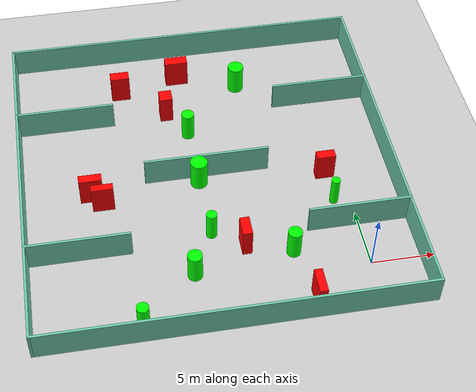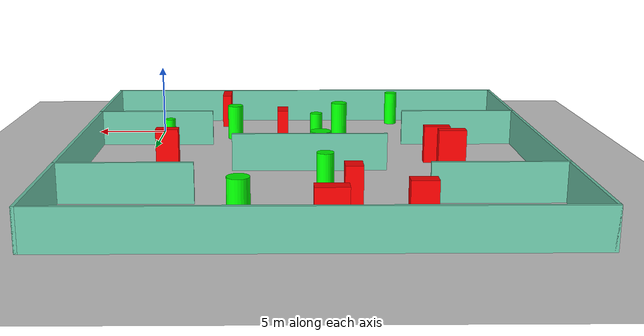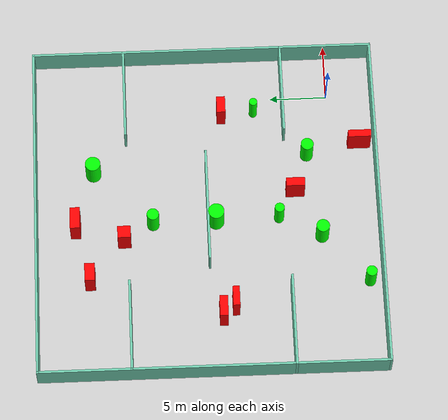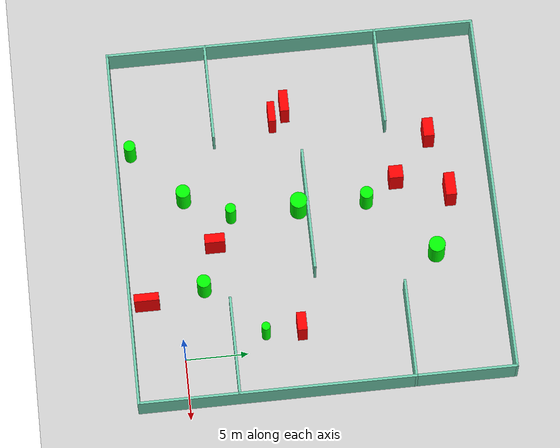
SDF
<sdf version="1.7">
 <world name="default">
  <light name="sun" type="directional">
   <pose>0 0 10 0 -0 0</pose>
   <diffuse>0.8 0.8 0.8 1</diffuse>
   <specular>0.2 0.2 0.2 1</specular>
   <attenuation>
    <range>1000</range>
    <constant>0.9</constant>
    <linear>0.01</linear>
    <quadratic>0.001</quadratic>
   </attenuation>
   <direction>-0.5 0.1 -0.9</direction>
   <spot><inner_angle>0</inner_angle><outer_angle>0</outer_angle><falloff>0</falloff></spot>
  </light>
  <model name="ground_plane">
   <static>1</static>
   <link name="link">
    <collision name="collision">
     <geometry><plane><normal>0 0 1</normal><size>100 100</size></plane></geometry>
     <surface>
      <contact><collide_bitmask>65535</collide_bitmask></contact>
      <friction><ode><mu>100</mu><mu2>50</mu2></ode></friction>
     </surface>
    </collision>
    <visual name="visual">
     <cast_shadows>0</cast_shadows>
     <geometry><plane><normal>0 0 1</normal><size>100 100</size></plane></geometry>
     <material>
      <script><uri>file://media/materials/scripts/gazebo.material</uri><name>Gazebo/Grey</name></script>
     </material>
    </visual>
   </link>
  </model>
  <gravity>0 0 -9.8</gravity>
  <magnetic_field>6e-06 2.3e-05 -4.2e-05</magnetic_field>
  <atmosphere type="adiabatic"/>
  <physics type="ode">
   <max_step_size>0.001</max_step_size>
   <real_time_factor>1</real_time_factor>
   <real_time_update_rate>1000</real_time_update_rate>
  </physics>
  <scene><ambient>0.4 0.4 0.4 1</ambient><background>0.7 0.7 0.7 1</background><shadows>1</shadows></scene>
  <spherical_coordinates>
   <surface_model>EARTH_WGS84</surface_model>
   <latitude_deg>0</latitude_deg>
   <longitude_deg>0</longitude_deg>
   <elevation>0</elevation>
   <heading_deg>0</heading_deg>
  </spherical_coordinates>
  <model name="my_base_walls">
   <link name="Wall_10">
    <collision name="Wall_10_Collision">
     <geometry><box><size>8.2 0.2 2.5</size></box></geometry>
     <pose>0 0 1.25 0 -0 0</pose>
    </collision>
    <visual name="Wall_10_Visual">
     <pose>0 0 1.25 0 -0 0</pose>
     <geometry><box><size>8.2 0.2 2.5</size></box></geometry>
     <material>
      <script><uri>file://media/materials/scripts/gazebo.material</uri><name>Gazebo/Grey</name></script>
      <ambient>0.435294 0.796078 0.67451 1</ambient>
     </material>
     <meta><layer>0</layer></meta>
    </visual>
    <pose>-11 -7 0 0 -0 0</pose>
   </link>
   <link name="Wall_12">
    <collision name="Wall_12_Collision">
     <geometry><box><size>8.2 0.2 2.5</size></box></geometry>
     <pose>0 0 1.25 0 -0 0</pose>
    </collision>
    <visual name="Wall_12_Visual">
     <pose>0 0 1.25 0 -0 0</pose>
     <geometry><box><size>8.2 0.2 2.5</size></box></geometry>
     <material>
      <script><uri>file://media/materials/scripts/gazebo.material</uri><name>Gazebo/Grey</name></script>
      <ambient>0.435294 0.796078 0.67451 1</ambient>
     </material>
     <meta><layer>0</layer></meta>
    </visual>
    <pose>-11 7 0 0 -0 0</pose>
   </link>
   <link name="Wall_14">
    <collision name="Wall_14_Collision">
     <geometry><box><size>8.2 0.2 2.5</size></box></geometry>
     <pose>0 0 1.25 0 -0 0</pose>
    </collision>
    <visual name="Wall_14_Visual">
     <pose>0 0 1.25 0 -0 0</pose>
     <geometry><box><size>8.2 0.2 2.5</size></box></geometry>
     <material>
      <script><uri>file://media/materials/scripts/gazebo.material</uri><name>Gazebo/Grey</name></script>
      <ambient>0.435294 0.796078 0.67451 1</ambient>
     </material>
     <meta><layer>0</layer></meta>
    </visual>
    <pose>11 7 0 0 -0 3.14159</pose>
   </link>
   <link name="Wall_16">
    <collision name="Wall_16_Collision">
     <geometry><box><size>10.2 0.2 2.5</size></box></geometry>
     <pose>0 0 1.25 0 -0 0</pose>
    </collision>
    <visual name="Wall_16_Visual">
     <pose>0 0 1.25 0 -0 0</pose>
     <geometry><box><size>10.2 0.2 2.5</size></box></geometry>
     <material>
      <script><uri>file://media/materials/scripts/gazebo.material</uri><name>Gazebo/Grey</name></script>
      <ambient>0.435294 0.796078 0.67451 1</ambient>
     </material>
     <meta><layer>0</layer></meta>
    </visual>
    <pose>0 0 0 0 -0 3.14159</pose>
   </link>
   <link name="Wall_2">
    <collision name="Wall_2_Collision">
     <geometry><box><size>30.2 0.2 2.5</size></box></geometry>
     <pose>0 0 1.25 0 -0 0</pose>
    </collision>
    <visual name="Wall_2_Visual">
     <pose>0 0 1.25 0 -0 0</pose>
     <geometry><box><size>30.2 0.2 2.5</size></box></geometry>
     <material>
      <script><uri>file://media/materials/scripts/gazebo.material</uri><name>Gazebo/Grey</name></script>
      <ambient>0.435294 0.796078 0.67451 1</ambient>
     </material>
     <meta><layer>0</layer></meta>
    </visual>
    <pose>0 -15 0 0 -0 3.14159</pose>
   </link>
   <link name="Wall_3">
    <collision name="Wall_3_Collision">
     <geometry><box><size>30.2 0.2 2.5</size></box></geometry>
     <pose>0 0 1.25 0 -0 0</pose>
    </collision>
    <visual name="Wall_3_Visual">
     <pose>0 0 1.25 0 -0 0</pose>
     <geometry><box><size>30.2 0.2 2.5</size></box></geometry>
     <material>
      <script><uri>file://media/materials/scripts/gazebo.material</uri><name>Gazebo/Grey</name></script>
      <ambient>0.435294 0.796078 0.67451 1</ambient>
     </material>
     <meta><layer>0</layer></meta>
    </visual>
    <pose>-15 0 0 0 -0 1.5708</pose>
   </link>
   <link name="Wall_4">
    <collision name="Wall_4_Collision">
     <geometry><box><size>30.2 0.2 2.5</size></box></geometry>
     <pose>0 0 1.25 0 -0 0</pose>
    </collision>
    <visual name="Wall_4_Visual">
     <pose>0 0 1.25 0 -0 0</pose>
     <geometry><box><size>30.2 0.2 2.5</size></box></geometry>
     <material>
      <script><uri>file://media/materials/scripts/gazebo.material</uri><name>Gazebo/Grey</name></script>
      <ambient>0.435294 0.796078 0.67451 1</ambient>
     </material>
     <meta><layer>0</layer></meta>
    </visual>
    <pose>0 15 0 0 -0 0</pose>
   </link>
   <link name="Wall_6">
    <collision name="Wall_6_Collision">
     <geometry><box><size>30.2 0.2 2.5</size></box></geometry>
     <pose>0 0 1.25 0 -0 0</pose>
    </collision>
    <visual name="Wall_6_Visual">
     <pose>0 0 1.25 0 -0 0</pose>
     <geometry><box><size>30.2 0.2 2.5</size></box></geometry>
     <material>
      <script><uri>file://media/materials/scripts/gazebo.material</uri><name>Gazebo/Grey</name></script>
      <ambient>0.435294 0.796078 0.67451 1</ambient>
     </material>
     <meta><layer>0</layer></meta>
    </visual>
    <pose>15 0 0 0 -0 1.5708</pose>
   </link>
   <link name="Wall_8">
    <collision name="Wall_8_Collision">
     <geometry><box><size>8.2 0.2 2.5</size></box></geometry>
     <pose>0 0 1.25 0 -0 0</pose>
    </collision>
    <visual name="Wall_8_Visual">
     <pose>0 0 1.25 0 -0 0</pose>
     <geometry><box><size>8.2 0.2 2.5</size></box></geometry>
     <material>
      <script><uri>file://media/materials/scripts/gazebo.material</uri><name>Gazebo/Grey</name></script>
      <ambient>0.435294 0.796078 0.67451 1</ambient>
     </material>
     <meta><layer>0</layer></meta>
    </visual>
    <pose>11 -7 0 0 -0 3.14159</pose>
   </link>
   <static>1</static>
   <pose>-11 11 0 0 -0 0</pose>
  </model>
  <model name="cylinder1">
   <static>1</static>
   <link name="link">
    <inertial>
     <mass>1</mass>
     <inertia><ixx>0.5</ixx><ixy>0</ixy><ixz>0</ixz><iyy>0.5</iyy><iyz>0</iyz><izz>1</izz></inertia>
    </inertial>
    <collision name="collision">
     <geometry><cylinder><radius>0.4700029721431055</radius><length>2.5</length></cylinder></geometry>
    </collision>
    <visual name="visual">
     <geometry><cylinder><radius>0.4700029721431055</radius><length>2.5</length></cylinder></geometry>
     <material>
      <ambient>0 1 0 1</ambient>
      <diffuse>0 1 0 1</diffuse>
      <specular>0.1 0.1 0.1 1</specular>
      <emissive>0 0 0 0</emissive>
     </material>
    </visual>
   </link>
   <pose>-17.856133124498424 -2.859635101211327 1.25 0 0 0</pose>
  </model>
  <model name="cylinder2">
   <static>1</static>
   <link name="link">
    <inertial>
     <mass>1</mass>
     <inertia><ixx>0.5</ixx><ixy>0</ixy><ixz>0</ixz><iyy>0.5</iyy><iyz>0</iyz><izz>1</izz></inertia>
    </inertial>
    <collision name="collision">
     <geometry><cylinder><radius>0.6654341513044223</radius><length>2.5</length></cylinder></geometry>
    </collision>
    <visual name="visual">
     <geometry><cylinder><radius>0.6654341513044223</radius><length>2.5</length></cylinder></geometry>
     <material>
      <ambient>0 1 0 1</ambient>
      <diffuse>0 1 0 1</diffuse>
      <specular>0.1 0.1 0.1 1</specular>
      <emissive>0 0 0 0</emissive>
     </material>
    </visual>
   </link>
   <pose>-6.830680796081278 20.927742915955594 1.25 0 0 0</pose>
  </model>
  <model name="cylinder3">
   <static>1</static>
   <link name="link">
    <inertial>
     <mass>1</mass>
     <inertia><ixx>0.5</ixx><ixy>0</ixy><ixz>0</ixz><iyy>0.5</iyy><iyz>0</iyz><izz>1</izz></inertia>
    </inertial>
    <collision name="collision">
     <geometry><cylinder><radius>0.5544599650150616</radius><length>2.5</length></cylinder></geometry>
    </collision>
    <visual name="visual">
     <geometry><cylinder><radius>0.5544599650150616</radius><length>2.5</length></cylinder></geometry>
     <material>
      <ambient>0 1 0 1</ambient>
      <diffuse>0 1 0 1</diffuse>
      <specular>0.1 0.1 0.1 1</specular>
      <emissive>0 0 0 0</emissive>
     </material>
    </visual>
   </link>
   <pose>-5.640408760184254 2.0427717739137963 1.25 0 0 0</pose>
  </model>
  <model name="cylinder4">
   <static>1</static>
   <link name="link">
    <inertial>
     <mass>1</mass>
     <inertia><ixx>0.5</ixx><ixy>0</ixy><ixz>0</ixz><iyy>0.5</iyy><iyz>0</iyz><izz>1</izz></inertia>
    </inertial>
    <collision name="collision">
     <geometry><cylinder><radius>0.6981440605118652</radius><length>2.5</length></cylinder></geometry>
    </collision>
    <visual name="visual">
     <geometry><cylinder><radius>0.6981440605118652</radius><length>2.5</length></cylinder></geometry>
     <material>
      <ambient>0 1 0 1</ambient>
      <diffuse>0 1 0 1</diffuse>
      <specular>0.1 0.1 0.1 1</specular>
      <emissive>0 0 0 0</emissive>
     </material>
    </visual>
   </link>
   <pose>-11.746150116909197 10.288501790645515 1.25 0 0 0</pose>
  </model>
  <model name="cylinder5">
   <static>1</static>
   <link name="link">
    <inertial>
     <mass>1</mass>
     <inertia><ixx>0.5</ixx><ixy>0</ixy><ixz>0</ixz><iyy>0.5</iyy><iyz>0</iyz><izz>1</izz></inertia>
    </inertial>
    <collision name="collision">
     <geometry><cylinder><radius>0.5796327096251394</radius><length>2.5</length></cylinder></geometry>
    </collision>
    <visual name="visual">
     <geometry><cylinder><radius>0.5796327096251394</radius><length>2.5</length></cylinder></geometry>
     <material>
      <ambient>0 1 0 1</ambient>
      <diffuse>0 1 0 1</diffuse>
      <specular>0.1 0.1 0.1 1</specular>
      <emissive>0 0 0 0</emissive>
     </material>
    </visual>
   </link>
   <pose>-13.47854534447947 1.0887784526393034 1.25 0 0 0</pose>
  </model>
  <model name="cylinder6">
   <static>1</static>
   <link name="link">
    <inertial>
     <mass>1</mass>
     <inertia><ixx>0.5</ixx><ixy>0</ixy><ixz>0</ixz><iyy>0.5</iyy><iyz>0</iyz><izz>1</izz></inertia>
    </inertial>
    <collision name="collision">
     <geometry><cylinder><radius>0.5288904925238789</radius><length>2.5</length></cylinder></geometry>
    </collision>
    <visual name="visual">
     <geometry><cylinder><radius>0.5288904925238789</radius><length>2.5</length></cylinder></geometry>
     <material>
      <ambient>0 1 0 1</ambient>
      <diffuse>0 1 0 1</diffuse>
      <specular>0.1 0.1 0.1 1</specular>
      <emissive>0 0 0 0</emissive>
     </material>
    </visual>
   </link>
   <pose>-11.836034725953578 15.805976802765496 1.25 0 0 0</pose>
  </model>
  <model name="cylinder7">
   <static>1</static>
   <link name="link">
    <inertial>
     <mass>1</mass>
     <inertia><ixx>0.5</ixx><ixy>0</ixy><ixz>0</ixz><iyy>0.5</iyy><iyz>0</iyz><izz>1</izz></inertia>
    </inertial>
    <collision name="collision">
     <geometry><cylinder><radius>0.42324178643101856</radius><length>2.5</length></cylinder></geometry>
    </collision>
    <visual name="visual">
     <geometry><cylinder><radius>0.42324178643101856</radius><length>2.5</length></cylinder></geometry>
     <material>
      <ambient>0 1 0 1</ambient>
      <diffuse>0 1 0 1</diffuse>
      <specular>0.1 0.1 0.1 1</specular>
      <emissive>0 0 0 0</emissive>
     </material>
    </visual>
   </link>
   <pose>-11.621219321426562 4.768083543275767 1.25 0 0 0</pose>
  </model>
  <model name="cylinder8">
   <static>1</static>
   <link name="link">
    <inertial>
     <mass>1</mass>
     <inertia><ixx>0.5</ixx><ixy>0</ixy><ixz>0</ixz><iyy>0.5</iyy><iyz>0</iyz><izz>1</izz></inertia>
    </inertial>
    <collision name="collision">
     <geometry><cylinder><radius>0.3493312355858553</radius><length>2.5</length></cylinder></geometry>
    </collision>
    <visual name="visual">
     <geometry><cylinder><radius>0.3493312355858553</radius><length>2.5</length></cylinder></geometry>
     <material>
      <ambient>0 1 0 1</ambient>
      <diffuse>0 1 0 1</diffuse>
      <specular>0.1 0.1 0.1 1</specular>
      <emissive>0 0 0 0</emissive>
     </material>
    </visual>
   </link>
   <pose>-1.3440366335444551 6.598195989262274 1.25 0 0 0</pose>
  </model>
  <model name="box1">
   <static>1</static>
   <link name="link">
    <inertial>
     <mass>1</mass>
     <inertia><ixx>0.083</ixx><ixy>0</ixy><ixz>0</ixz><iyy>0.083</iyy><iyz>0</iyz><izz>0.083</izz></inertia>
    </inertial>
    <collision name="collision">
     <geometry><box><size>1.588398206185054 0.8712566316271816 2.5</size></box></geometry>
    </collision>
    <visual name="visual">
     <geometry><box><size>1.588398206185054 0.8712566316271816 2.5</size></box></geometry>
     <material>
      <ambient>1 0 0 1</ambient>
      <diffuse>1 0 0 1</diffuse>
      <specular>0.1 0.1 0.1 1</specular>
      <emissive>0 0 0 0</emissive>
     </material>
    </visual>
    <sensor name="my_contact" type="contact">
     <contact><collision>box_collision</collision><topic>__default_topic__</topic></contact>
    </sensor>
   </link>
   <pose>-17.003115322522145 21.40571796064978 1.25 0 0 0</pose>
  </model>
  <model name="box2">
   <static>1</static>
   <link name="link">
    <inertial>
     <mass>1</mass>
     <inertia><ixx>0.083</ixx><ixy>0</ixy><ixz>0</ixz><iyy>0.083</iyy><iyz>0</iyz><izz>0.083</izz></inertia>
    </inertial>
    <collision name="collision">
     <geometry><box><size>1.7514700627717188 0.5984008950141573 2.5</size></box></geometry>
    </collision>
    <visual name="visual">
     <geometry><box><size>1.7514700627717188 0.5984008950141573 2.5</size></box></geometry>
     <material>
      <ambient>1 0 0 1</ambient>
      <diffuse>1 0 0 1</diffuse>
      <specular>0.1 0.1 0.1 1</specular>
      <emissive>0 0 0 0</emissive>
     </material>
    </visual>
    <sensor name="my_contact" type="contact">
     <contact><collision>box_collision</collision><topic>__default_topic__</topic></contact>
    </sensor>
   </link>
   <pose>-19.687203694008225 8.881577727347505 1.25 0 0 0</pose>
  </model>
  <model name="box3">
   <static>1</static>
   <link name="link">
    <inertial>
     <mass>1</mass>
     <inertia><ixx>0.083</ixx><ixy>0</ixy><ixz>0</ixz><iyy>0.083</iyy><iyz>0</iyz><izz>0.083</izz></inertia>
    </inertial>
    <collision name="collision">
     <geometry><box><size>1.0728209507682518 1.1357441079588286 2.5</size></box></geometry>
    </collision>
    <visual name="visual">
     <geometry><box><size>1.0728209507682518 1.1357441079588286 2.5</size></box></geometry>
     <material>
      <ambient>1 0 0 1</ambient>
      <diffuse>1 0 0 1</diffuse>
      <specular>0.1 0.1 0.1 1</specular>
      <emissive>0 0 0 0</emissive>
     </material>
    </visual>
    <sensor name="my_contact" type="contact">
     <contact><collision>box_collision</collision><topic>__default_topic__</topic></contact>
    </sensor>
   </link>
   <pose>-13.382493492716286 18.351820580826264 1.25 0 0 0</pose>
  </model>
  <model name="box4">
   <static>1</static>
   <link name="link">
    <inertial>
     <mass>1</mass>
     <inertia><ixx>0.083</ixx><ixy>0</ixy><ixz>0</ixz><iyy>0.083</iyy><iyz>0</iyz><izz>0.083</izz></inertia>
    </inertial>
    <collision name="collision">
     <geometry><box><size>0.7607756543933117 1.6349178310230217 2.5</size></box></geometry>
    </collision>
    <visual name="visual">
     <geometry><box><size>0.7607756543933117 1.6349178310230217 2.5</size></box></geometry>
     <material>
      <ambient>1 0 0 1</ambient>
      <diffuse>1 0 0 1</diffuse>
      <specular>0.1 0.1 0.1 1</specular>
      <emissive>0 0 0 0</emissive>
     </material>
    </visual>
    <sensor name="my_contact" type="contact">
     <contact><collision>box_collision</collision><topic>__default_topic__</topic></contact>
    </sensor>
   </link>
   <pose>-9.202692596899674 3.250114162630547 1.25 0 0 0</pose>
  </model>
  <model name="box5">
   <static>1</static>
   <link name="link">
    <inertial>
     <mass>1</mass>
     <inertia><ixx>0.083</ixx><ixy>0</ixy><ixz>0</ixz><iyy>0.083</iyy><iyz>0</iyz><izz>0.083</izz></inertia>
    </inertial>
    <collision name="collision">
     <geometry><box><size>1.9353549268684864 0.8663038903909601 2.5</size></box></geometry>
    </collision>
    <visual name="visual">
     <geometry><box><size>1.9353549268684864 0.8663038903909601 2.5</size></box></geometry>
     <material>
      <ambient>1 0 0 1</ambient>
      <diffuse>1 0 0 1</diffuse>
      <specular>0.1 0.1 0.1 1</specular>
      <emissive>0 0 0 0</emissive>
     </material>
    </visual>
    <sensor name="my_contact" type="contact">
     <contact><collision>box_collision</collision><topic>__default_topic__</topic></contact>
    </sensor>
   </link>
   <pose>-11.90170795717226 22.589258444664807 1.25 0 0 0</pose>
  </model>
  <model name="box6">
   <static>1</static>
   <link name="link">
    <inertial>
     <mass>1</mass>
     <inertia><ixx>0.083</ixx><ixy>0</ixy><ixz>0</ixz><iyy>0.083</iyy><iyz>0</iyz><izz>0.083</izz></inertia>
    </inertial>
    <collision name="collision">
     <geometry><box><size>1.8447472703865562 0.722193121868272 2.5</size></box></geometry>
    </collision>
    <visual name="visual">
     <geometry><box><size>1.8447472703865562 0.722193121868272 2.5</size></box></geometry>
     <material>
      <ambient>1 0 0 1</ambient>
      <diffuse>1 0 0 1</diffuse>
      <specular>0.1 0.1 0.1 1</specular>
      <emissive>0 0 0 0</emissive>
     </material>
    </visual>
    <sensor name="my_contact" type="contact">
     <contact><collision>box_collision</collision><topic>__default_topic__</topic></contact>
    </sensor>
   </link>
   <pose>-20.543216692639877 9.98118896551853 1.25 0 0 0</pose>
  </model>
  <model name="box7">
   <static>1</static>
   <link name="link">
    <inertial>
     <mass>1</mass>
     <inertia><ixx>0.083</ixx><ixy>0</ixy><ixz>0</ixz><iyy>0.083</iyy><iyz>0</iyz><izz>0.083</izz></inertia>
    </inertial>
    <collision name="collision">
     <geometry><box><size>0.647669627729254 2.0034444614314633 2.5</size></box></geometry>
    </collision>
    <visual name="visual">
     <geometry><box><size>0.647669627729254 2.0034444614314633 2.5</size></box></geometry>
     <material>
      <ambient>1 0 0 1</ambient>
      <diffuse>1 0 0 1</diffuse>
      <specular>0.1 0.1 0.1 1</specular>
      <emissive>0 0 0 0</emissive>
     </material>
    </visual>
    <sensor name="my_contact" type="contact">
     <contact><collision>box_collision</collision><topic>__default_topic__</topic></contact>
    </sensor>
   </link>
   <pose>-4.7603204542086885 -2.6286488580191265 1.25 0 0 0</pose>
  </model>
  <model name="box8">
   <static>1</static>
   <link name="link">
    <inertial>
     <mass>1</mass>
     <inertia><ixx>0.083</ixx><ixy>0</ixy><ixz>0</ixz><iyy>0.083</iyy><iyz>0</iyz><izz>0.083</izz></inertia>
    </inertial>
    <collision name="collision">
     <geometry><box><size>1.5152584083653358 0.7638718736025736 2.5</size></box></geometry>
    </collision>
    <visual name="visual">
     <geometry><box><size>1.5152584083653358 0.7638718736025736 2.5</size></box></geometry>
     <material>
      <ambient>1 0 0 1</ambient>
      <diffuse>1 0 0 1</diffuse>
      <specular>0.1 0.1 0.1 1</specular>
      <emissive>0 0 0 0</emissive>
     </material>
    </visual>
    <sensor name="my_contact" type="contact">
     <contact><collision>box_collision</collision><topic>__default_topic__</topic></contact>
    </sensor>
   </link>
   <pose>-1.4722741915106603 9.47200437724032 1.25 0 0 0</pose>
  </model>
 </world>
</sdf>
